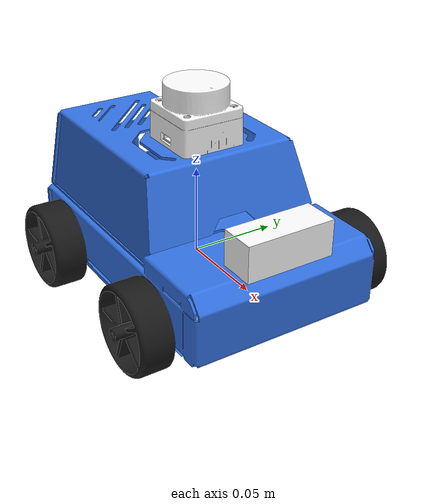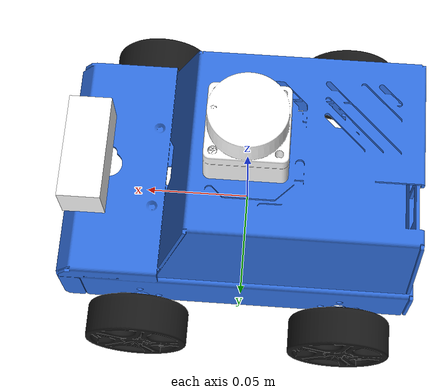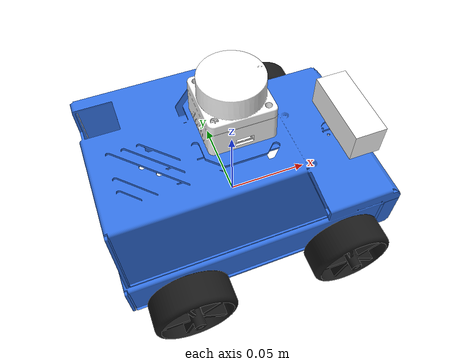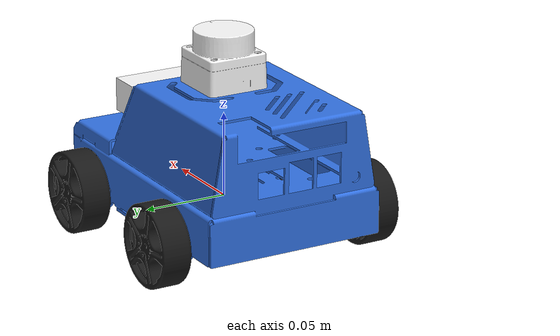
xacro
<?xml version="1.0"?>
<robot name="mi_robot" xmlns:xacro="http://www.ros.org/wiki/xacro">

  <material name="azul">
      <color rgba="0.2 0.45 0.9 1"/>
  </material>

  <xacro:property name="rueda_radio" value="${0.049/2}"/>
  <xacro:property name="distancia_ejes" value="${0.096}"/>      <!-- wheelbase (m) -->
  <xacro:property name="separacion_ruedas" value="${0.134}"/>   <!-- track (m) -->
  <xacro:property name="lx" value="${distancia_ejes / 2.0}"/>
  <xacro:property name="ly" value="${separacion_ruedas / 2.0}"/>
  <xacro:property name="rueda_ancho" value="0.0215"/>
  <xacro:property name="rueda_masa" value="0.1"/>

  <xacro:property name="m_scale" value="0.001"/>

  <!-- Chasis (dado) -->
  <xacro:property name="chasis_largo" value="0.1986"/>
  <xacro:property name="chasis_ancho" value="0.153"/>
  <xacro:property name="chasis_alto" value="0.1242"/>
  <xacro:property name="chasis_masa" value="0.396"/>

  <xacro:macro name="inercia_caja" params="m x y z">
    <inertia ixx="${m*(y*y + z*z)/12.0}" ixy="0" ixz="0"
             iyy="${m*(x*x + z*z)/12.0}" iyz="0"
             izz="${m*(x*x + y*y)/12.0}"/>
  </xacro:macro>

  <xacro:macro name="inercia_cilindro" params="m r h">
    <inertia ixx="${m*(3*r*r + h*h)/12.0}" ixy="0" ixz="0"
             iyy="${m*(3*r*r + h*h)/12.0}" iyz="0"
             izz="${m*r*r/2.0}"/>
  </xacro:macro>

<xacro:macro name="stl_link_caja"
             params="link_name x0 y0 z0 cx cy cz filename roll pitch yaw mass
                     ix iy iz color:='gris'">
  <link name="${link_name}">
    <visual>
      <origin xyz="${x0*m_scale} ${y0*m_scale} ${z0*m_scale}" rpy="${roll} ${pitch} ${yaw}"/>
      <geometry>
        <mesh filename="package://mi_robot_diferencial/meshes/${filename}.stl" scale="${m_scale} ${m_scale} ${m_scale}"/>
      </geometry>
      <material name="${color}"/>
    </visual>

    <collision>
      <origin xyz="${(x0+cx)*m_scale} ${(y0+cy*cos(roll)-cz*sin(roll))*m_scale} ${(z0+cy*sin(roll)+cz*cos(roll))*m_scale}"
              rpy="${roll} ${pitch} ${yaw}"/>
      <geometry><box size="${ix} ${iy} ${iz}"/></geometry>
    </collision>

    <inertial>
      <origin xyz="${(x0+cx)*m_scale} ${(y0+cy*cos(roll)-cz*sin(roll))*m_scale} ${(z0+cy*sin(roll)+cz*cos(roll))*m_scale}"
              rpy="${roll} ${pitch} ${yaw}"/>
      <mass value="${mass}"/>
      <xacro:inercia_caja m="${mass}" x="${ix}" y="${iy}" z="${iz}"/>
    </inertial>
  </link>
</xacro:macro>

<xacro:stl_link_caja link_name="base_link" filename="chassis_sin_ruedas"
                x0="0.0" y0="0.0" z0="0.0"
                cx="-13" cy="0.0" cz="50"
                roll="0.0" pitch="0.0" yaw="0.0"
                mass="${chasis_masa}"
                ix="${chasis_largo}" iy="${chasis_ancho}" iz="${chasis_alto}"
                color="azul"/>

  <xacro:macro name="rueda" params="prefijo x_signo y_signo filename='rueda'">
    <link name="rueda_${prefijo}">
      <visual>
        <geometry><mesh filename="package://mi_robot_diferencial/meshes/${filename}.stl" scale="${m_scale} ${m_scale} ${m_scale}"/></geometry>
        <material name="negro"><color rgba="0.1 0.1 0.1 1"/></material>
      </visual>
      <collision>
        <geometry><sphere radius="${rueda_radio}"/></geometry>
      </collision>
      <inertial>
        <origin xyz="0 0 0" rpy=" ${pi/2} 0 0"/>
        <mass value="${rueda_masa}"/>
        <xacro:inercia_cilindro m="${rueda_masa}" r="${rueda_radio}" h="${rueda_ancho}"/>
      </inertial>
          </link>

    <joint name="joint_rueda_${prefijo}" type="continuous">
      <parent link="base_link"/>
      <child link="rueda_${prefijo}"/>
      <origin xyz="${x_signo*lx} ${y_signo*ly} 0" rpy="0 0 0"/>
      <axis xyz="0 1 0"/>
      <limit effort="0.392266" velocity="47.123889"/>
    </joint>
  </xacro:macro>

  <xacro:rueda prefijo="del_izq" x_signo="1" y_signo="1"/>
  <xacro:rueda prefijo="del_der" x_signo="1" y_signo="-1"/>
  <xacro:rueda prefijo="tra_der" x_signo="-1" y_signo="-1"/>
  <xacro:rueda prefijo="tra_izq" x_signo="-1" y_signo="1"/>

  <xacro:property name="lidar_x" value="0.0377"/>
  <xacro:property name="lidar_y" value="0.0375"/>
  <xacro:property name="lidar_z" value="0.033"/>
  <xacro:property name="lidar_masa" value="0.100"/>
  <xacro:property name="lidar_altura" value="${0.108 - rueda_radio}"/>
  <xacro:property name="lidar_mesh_z" value="0.08368"/>

   <link name="lidar_link">
    <visual>
      <origin xyz="0 0 ${-lidar_mesh_z}" rpy="0 0 0"/>
      <geometry><mesh filename="package://mi_robot_diferencial/meshes/lidar_MS200.stl" scale="${m_scale} ${m_scale} ${m_scale}"/></geometry>
      <material name="blanco"><color rgba="1 1 1 1"/></material>
    </visual>
    <collision>
      <origin xyz="0 0 0" rpy="0 0 0"/>
      <geometry><box size="${lidar_x} ${lidar_y} ${lidar_z}"/></geometry>
    </collision>
    <inertial>
      <origin xyz="0 0 0" rpy="0 0 0"/>
      <mass value="${lidar_masa}"/>
      <xacro:inercia_caja m="${lidar_masa}" x="${lidar_x}" y="${lidar_y}" z="${lidar_z}"/>
    </inertial>
  </link>

  <joint name="joint_lidar" type="fixed">
    <parent link="base_link"/>
    <child link="lidar_link"/>
    <origin xyz="0 0 ${lidar_altura}" rpy="0 0 0"/>
  </joint>

  <gazebo reference="lidar_link">
    <sensor name="ORBBEC MS200" type="gpu_lidar">
      <topic>/scan</topic>
      <gz_frame_id>lidar_link</gz_frame_id>
      <update_rate>10</update_rate>
      <always_on>1</always_on>
      <visualize>true</visualize>
      <lidar>
        <scan>
          <horizontal>
            <samples>450</samples>          <!-- muestras por vuelta -->
            <resolution>1</resolution>
            <min_angle>-3.14159</min_angle>
            <max_angle>3.14159</max_angle>
          </horizontal>
        </scan>
        <range>
          <min>0.03</min>
          <max>12</max>
          <resolution>0.01</resolution>
        </range>
        <noise>
          <type>gaussian</type>
          <mean>0.0</mean>
          <stddev>0.01</stddev>
        </noise>
      </lidar>
    </sensor>
  </gazebo>

  <link name="camera_link">
    <visual>
      <geometry><box size="0.02 0.05 0.02"/></geometry>
      <material name="blanco"><color rgba="1 1 1 1"/></material>
    </visual>
    <collision><geometry><box size="0.02 0.05 0.02"/></geometry></collision>
    <inertial>
      <mass value="0.01"/>
      <inertia ixx="0.00000241667" ixy="0.0" ixz="0.0" iyy="0.000000666667" iyz="0.0" izz="0.00000241667"/>
    </inertial>
  </link>

<joint name="joint_camera" type="fixed">
  <parent link="base_link"/>
  <child link="camera_link"/>
  <origin xyz="0.075 0 0.041" rpy="0 0 0"/>
</joint>
  <link name="camera_optica_link"/>
  <joint name="joint_camera_optica" type="fixed">
    <parent link="camera_link"/>
    <child link="camera_optica_link"/>
    <origin xyz="0 0 0" rpy="${-pi/2} 0 ${-pi/2}"/>
  </joint>

  <gazebo reference="camera_link">
    <sensor name="camera" type="camera">
      <gz_frame_id>camera_link</gz_frame_id>
      <topic>image_raw</topic>
      <update_rate>30</update_rate>
      <camera>
        <horizontal_fov>1.15192</horizontal_fov>
        <image><width>640</width><height>480</height></image>
        <clip><near>0.1</near><far>20</far></clip>
      </camera>
    </sensor>
  </gazebo>

  <gazebo>
    <plugin filename="gz-sim-joint-state-publisher-system"
            name="gz::sim::systems::JointStatePublisher">
      <topic>/joint_states</topic>
    </plugin>
  </gazebo>

  <gazebo>
    <plugin filename="gz-sim-diff-drive-system" name="gz::sim::systems::DiffDrive">
      <left_joint>joint_rueda_tra_izq</left_joint>
      <left_joint>joint_rueda_del_izq</left_joint>
      <right_joint>joint_rueda_tra_der</right_joint>
      <right_joint>joint_rueda_del_der</right_joint>
      <wheel_separation>${separacion_ruedas}</wheel_separation>
      <wheel_radius>${rueda_radio}</wheel_radius>
      <odom_publish_frequency>30</odom_publish_frequency>
      <topic>cmd_vel</topic>
      <odom_topic>odom</odom_topic>
      <frame_id>odom</frame_id>
        <child_frame_id>base_link</child_frame_id>
      <max_linear_velocity>1.0</max_linear_velocity>
      <min_linear_velocity>-1.0</min_linear_velocity>
      <max_angular_velocity>4.0</max_angular_velocity>
      <min_angular_velocity>-4.0</min_angular_velocity>
      <max_linear_acceleration>2.0</max_linear_acceleration>
      <min_linear_acceleration>-2.0</min_linear_acceleration>
    </plugin>
  </gazebo>

<gazebo>
  <plugin filename="gz-sim-odometry-publisher-system"
          name="gz::sim::systems::OdometryPublisher">
    <odom_frame>odom</odom_frame>
    <robot_base_frame>base_link</robot_base_frame>
    <odom_topic>/ground_truth</odom_topic>
    <odom_publish_frequency>50</odom_publish_frequency>
    <dimensions>2</dimensions>
  </plugin>
</gazebo>

</robot>
